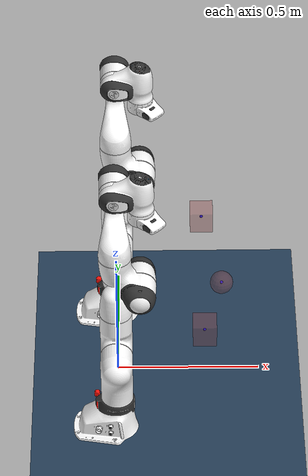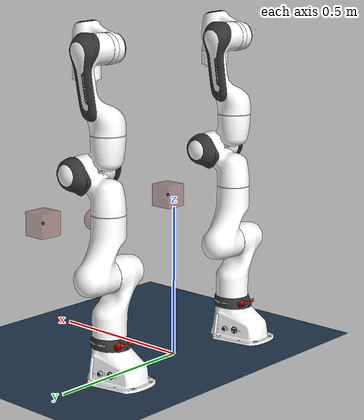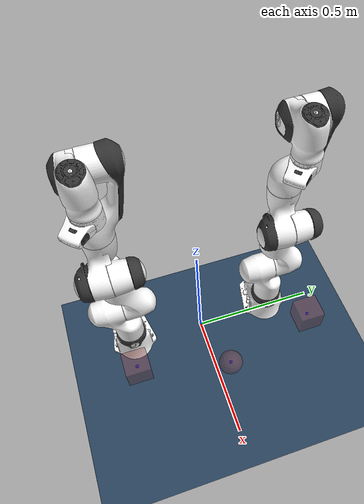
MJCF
<mujoco model="duo_fr3_scene">
  <include file="dual_fr3.xml" />
  <option gravity="0 0 0.0" />

  <!-- visual effect -->
  <statistic center="1 0.7 1.5" extent="0.8" />
  <visual>
    <headlight diffuse="0.6 0.6 0.6" ambient="0.3 0.3 0.3" specular="0 0 0" />
    <rgba haze="0.15 0.25 0.35 1" />
    <global azimuth="-140" elevation="-30" />
  </visual>

  <!-- background -->
  <asset>
    <texture type="skybox" builtin="flat" rgb1="0 0 0" rgb2="0 0 0" width="512" height="3072" />
    <texture type="2d" name="groundplane" builtin="checker" mark="edge" rgb1="0.2 0.3 0.4"
      rgb2="0.1 0.2 0.3" markrgb="0.8 0.8 0.8" width="300" height="300" />
    <material name="groundplane" texture="groundplane" texuniform="true" texrepeat="5 5"
      reflectance="0.2" />
  </asset>

  <worldbody>
    <!-- light and floor  -->
    <light pos="0 0 1.5" dir="0 0 -1" directional="true" />
    <geom name="floor" size="0 0 0.05" type="plane" material="groundplane" />

    <!-- Mocap object as target -->
    <body name="targetL" pos="0.3 0.3 0.45" quat="0 1 0 0" mocap="true">
      <geom type="box" size=".04 .04 .04" contype="0" conaffinity="0" rgba=".6 .3 .3 .4" />
      <site type="sphere" name="targetL_site" size="0.005" rgba="0 0 1 1" group="1" />
    </body>

    <body name="targetR"  pos="0.3 -0.3 0.45" quat="0 1 0 0" mocap="true">
      <geom type="box" size=".04 .04 .04" contype="0" conaffinity="0" rgba=".6 .3 .3 .4" />
      <site type="sphere" name="targetR_site" size="0.005" rgba="0 0 1 1" group="1" />
    </body>

    <body name="TCPL" pos="0.365 0 0.4" quat="0 1 0 0" mocap="true">
      <geom type="sphere" size=".04 .04 .04" contype="0" conaffinity="0" rgba=".6 .3 .3 .4" />
      <site type="sphere" name="TCPL_site" size="0.005" rgba="0 0 1 1" group="1" />
    </body>

    <body name="TCPR" pos="0.365 0 0.4" quat="0 1 0 0" mocap="true">
      <geom type="sphere" size=".04 .04 .04" contype="0" conaffinity="0" rgba=".6 .3 .3 .4" />
      <site type="sphere" name="TCPR_site" size="0.005" rgba="0 0 1 1" group="1" />
    </body>

  </worldbody>

</mujoco>

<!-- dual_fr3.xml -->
<mujoco model="duo_fr3">
  <compiler angle="radian" meshdir="assets"/>

  <option integrator="implicitfast"/>

  <default>
    <default class="fr3">
      <joint armature="0.1" damping="1"/>
      <position inheritrange="1"/>
      <default class="visual">
        <geom type="mesh" group="2" contype="0" conaffinity="0"/>
      </default>
      <default class="collision">
        <geom type="mesh" group="3" mass="0" density="0"/>
      </default>
      <site size="0.001" rgba="0.5 0.5 0.5 0.3" group="3"/>
    </default>
  </default>

  <asset>
    <material name="black" rgba=".2 .2 .2 1"/>
    <material name="white" rgba="1 1 1 1"/>
    <material name="red" rgba="1 0.072272 0.039546 1"/>
    <material name="gray" rgba="0.863156 0.863156 0.863157 1"/>
    <material name="button_green" rgba="0.102241 0.571125 0.102242 1"/>
    <material name="button_red" rgba="0.520996 0.008023 0.013702 1"/>
    <material name="button_blue" rgba="0.024157 0.445201 0.737911 1"/>

    <mesh file="link0_0.obj"/>
    <mesh file="link0_1.obj"/>
    <mesh file="link0_2.obj"/>
    <mesh file="link0_3.obj"/>
    <mesh file="link0_4.obj"/>
    <mesh file="link0_5.obj"/>
    <mesh file="link0_6.obj"/>
    <mesh file="link1.obj"/>
    <mesh file="link2.obj"/>
    <mesh file="link3_0.obj"/>
    <mesh file="link3_1.obj"/>
    <mesh file="link4_0.obj"/>
    <mesh file="link4_1.obj"/>
    <mesh file="link5_0.obj"/>
    <mesh file="link5_1.obj"/>
    <mesh file="link5_2.obj"/>
    <mesh file="link6_0.obj"/>
    <mesh file="link6_1.obj"/>
    <mesh file="link6_2.obj"/>
    <mesh file="link6_3.obj"/>
    <mesh file="link6_4.obj"/>
    <mesh file="link6_5.obj"/>
    <mesh file="link6_6.obj"/>
    <mesh file="link6_7.obj"/>
    <mesh file="link7_0.obj"/>
    <mesh file="link7_1.obj"/>
    <mesh file="link7_2.obj"/>
    <mesh file="link7_3.obj"/>

    <mesh name="link0_coll" file="link0.stl"/>
    <mesh name="link1_coll" file="link1.stl"/>
    <mesh name="link2_coll" file="link2.stl"/>
    <mesh name="link3_coll" file="link3.stl"/>
    <mesh name="link4_coll" file="link4.stl"/>
    <mesh name="link5_coll" file="link5.stl"/>
    <mesh name="link6_coll" file="link6.stl"/>
    <mesh name="link7_coll" file="link7.stl"/>
  </asset>

  <worldbody>
    <!-- left -->
    <body name="left_base" childclass="fr3" pos="0 0.3 0">
      <body name="left_fr3_link0">
        <geom mesh="link0_0" material="black" class="visual"/>
        <geom mesh="link0_1" material="white" class="visual"/>
        <geom mesh="link0_2" material="white" class="visual"/>
        <geom mesh="link0_3" material="white" class="visual"/>
        <geom mesh="link0_4" material="white" class="visual"/>
        <geom mesh="link0_5" material="red" class="visual"/>
        <geom mesh="link0_6" material="black" class="visual"/>
        <geom name="left_fr3_link0_collision" mesh="link0_coll" class="collision"/>
        <body name="left_fr3_link1" pos="0 0 0.333">
          <inertial pos="4.128e-07 -0.0181251 -0.0386036" quat="0.998098 -0.0605364 0.00380499 0.0110109" mass="2.92747"
            diaginertia="0.0239286 0.0227246 0.00610634"/>
          <joint name="left_fr3_joint1" axis="0 0 1" range="-2.7437 2.7437" actuatorfrcrange="-87 87"/>
          <geom name="left_fr3_link1_collision" class="collision" mesh="link1_coll"/>
          <geom material="white" mesh="link1" class="visual"/>
          <body name="left_fr3_link2" quat="1 -1 0 0">
            <inertial pos="0.00318289 -0.0743222 0.00881461" quat="0.502599 0.584437 -0.465998 0.434366" mass="2.93554"
              diaginertia="0.0629567 0.0411924 0.0246371"/>
            <joint name="left_fr3_joint2" axis="0 0 1" range="-1.7837 1.7837" actuatorfrcrange="-87 87"/>
            <geom material="white" mesh="link2" class="visual"/>
            <geom name="left_fr3_link2_collision" class="collision" mesh="link2_coll"/>
            <body name="left_fr3_link3" pos="0 -0.316 0" quat="1 1 0 0">
              <inertial pos="0.0407016 -0.00482006 -0.0289731" quat="0.921025 -0.244161 0.155272 0.260745" mass="2.2449"
                diaginertia="0.0267409 0.0189869 0.0171587"/>
              <joint name="left_fr3_joint3" axis="0 0 1" range="-2.9007 2.9007" actuatorfrcrange="-87 87"/>
              <geom mesh="link3_0" material="white" class="visual"/>
              <geom mesh="link3_1" material="black" class="visual"/>
              <geom name="left_fr3_link3_collision" class="collision" mesh="link3_coll"/>
              <body name="left_fr3_link4" pos="0.0825 0 0" quat="1 1 0 0">
                <inertial pos="-0.0459101 0.0630493 -0.00851879" quat="0.438018 0.803311 0.00937812 0.403414"
                  mass="2.6156" diaginertia="0.05139 0.0372717 0.0160047"/>
                <joint name="left_fr3_joint4" axis="0 0 1" range="-3.0421 -0.1518" actuatorfrcrange="-87 87"/>
                <geom mesh="link4_0" material="white" class="visual"/>
                <geom mesh="link4_1" material="black" class="visual"/>
                <geom name="left_fr3_link4_collision" class="collision" mesh="link4_coll"/>
                <body name="left_fr3_link5" pos="-0.0825 0.384 0" quat="1 -1 0 0">
                  <inertial pos="-0.00160396 0.0292536 -0.0972966" quat="0.919031 0.125604 0.0751531 -0.366003"
                    mass="2.32712" diaginertia="0.0579335 0.0449144 0.0130634"/>
                  <joint name="left_fr3_joint5" axis="0 0 1" range="-2.8065 2.8065" actuatorfrcrange="-12 12"/>
                  <geom mesh="link5_0" material="white" class="visual"/>
                  <geom mesh="link5_1" material="white" class="visual"/>
                  <geom mesh="link5_2" material="black" class="visual"/>
                  <geom name="left_fr3_link5_collision" class="collision" mesh="link5_coll"/>
                  <body name="left_fr3_link6" quat="1 1 0 0">
                    <inertial pos="0.0597131 -0.0410295 -0.0101693" quat="0.621301 0.552665 0.510011 0.220081"
                      mass="1.81704" diaginertia="0.0175039 0.0161123 0.00193529"/>
                    <joint name="left_fr3_joint6" axis="0 0 1" range="0.5445 4.5169" actuatorfrcrange="-12 12"/>
                    <geom mesh="link6_0" material="button_green" class="visual"/>
                    <geom mesh="link6_1" material="white" class="visual"/>
                    <geom mesh="link6_2" material="white" class="visual"/>
                    <geom mesh="link6_3" material="gray" class="visual"/>
                    <geom mesh="link6_4" material="button_red" class="visual"/>
                    <geom mesh="link6_5" material="white" class="visual"/>
                    <geom mesh="link6_6" material="black" class="visual"/>
                    <geom mesh="link6_7" material="button_blue" class="visual"/>
                    <geom name="left_fr3_link6_collision" class="collision" mesh="link6_coll"/>
                    <body name="left_fr3_link7" pos="0.088 0 0" quat="1 1 0 0">
                      <inertial pos="0.00452258 0.00862619 -0.0161633" quat="0.727579 0.0978688 -0.24906 0.63168"
                        mass="0.627143" diaginertia="0.000223836 0.000223642 5.64132e-07"/>
                      <joint name="left_fr3_joint7" axis="0 0 1" range="-3.0159 3.0159" actuatorfrcrange="-12 12"/>
                      <geom mesh="link7_0" material="black" class="visual"/>
                      <geom mesh="link7_1" material="white" class="visual"/>
                      <geom mesh="link7_2" material="white" class="visual"/>
                      <geom mesh="link7_3" material="black" class="visual"/>
                      <geom name="left_fr3_link7_collision" class="collision" mesh="link7_coll"/>
                      <!-- wrist camera -->
                      <camera name="left_ee_cam" pos="0 0 0.107" xyaxes="-1 0 0 0 1 0" fovy="60"/>
                      <site name="left_fr3_ee_attachment" pos="0 0 0.107" quat="1 0 0 0"/>
                    </body>
                      <!-- franka hand -->
                  </body>
                </body>
              </body>
            </body>
          </body>
        </body>
      </body>
    </body>

     <!-- right -->
    <body name="right_base" childclass="fr3" pos="0 -0.3 0">
      <body name="right_fr3_link0">
        <geom mesh="link0_0" material="black" class="visual"/>
        <geom mesh="link0_1" material="white" class="visual"/>
        <geom mesh="link0_2" material="white" class="visual"/>
        <geom mesh="link0_3" material="white" class="visual"/>
        <geom mesh="link0_4" material="white" class="visual"/>
        <geom mesh="link0_5" material="red" class="visual"/>
        <geom mesh="link0_6" material="black" class="visual"/>
        <geom name="right_fr3_link0_collision" mesh="link0_coll" class="collision"/>
        <body name="right_fr3_link1" pos="0 0 0.333">
          <inertial pos="4.128e-07 -0.0181251 -0.0386036" quat="0.998098 -0.0605364 0.00380499 0.0110109" mass="2.92747"
            diaginertia="0.0239286 0.0227246 0.00610634"/>
          <joint name="right_fr3_joint1" axis="0 0 1" range="-2.7437 2.7437" actuatorfrcrange="-87 87"/>
          <geom name="right_fr3_link1_collision" class="collision" mesh="link1_coll"/>
          <geom material="white" mesh="link1" class="visual"/>
          <body name="right_fr3_link2" quat="1 -1 0 0">
            <inertial pos="0.00318289 -0.0743222 0.00881461" quat="0.502599 0.584437 -0.465998 0.434366" mass="2.93554"
              diaginertia="0.0629567 0.0411924 0.0246371"/>
            <joint name="right_fr3_joint2" axis="0 0 1" range="-1.7837 1.7837" actuatorfrcrange="-87 87"/>
            <geom material="white" mesh="link2" class="visual"/>
            <geom name="right_fr3_link2_collision" class="collision" mesh="link2_coll"/>
            <body name="right_fr3_link3" pos="0 -0.316 0" quat="1 1 0 0">
              <inertial pos="0.0407016 -0.00482006 -0.0289731" quat="0.921025 -0.244161 0.155272 0.260745" mass="2.2449"
                diaginertia="0.0267409 0.0189869 0.0171587"/>
              <joint name="right_fr3_joint3" axis="0 0 1" range="-2.9007 2.9007" actuatorfrcrange="-87 87"/>
              <geom mesh="link3_0" material="white" class="visual"/>
              <geom mesh="link3_1" material="black" class="visual"/>
              <geom name="right_fr3_link3_collision" class="collision" mesh="link3_coll"/>
              <body name="right_fr3_link4" pos="0.0825 0 0" quat="1 1 0 0">
                <inertial pos="-0.0459101 0.0630493 -0.00851879" quat="0.438018 0.803311 0.00937812 0.403414"
                  mass="2.6156" diaginertia="0.05139 0.0372717 0.0160047"/>
                <joint name="right_fr3_joint4" axis="0 0 1" range="-3.0421 -0.1518" actuatorfrcrange="-87 87"/>
                <geom mesh="link4_0" material="white" class="visual"/>
                <geom mesh="link4_1" material="black" class="visual"/>
                <geom name="right_fr3_link4_collision" class="collision" mesh="link4_coll"/>
                <body name="right_fr3_link5" pos="-0.0825 0.384 0" quat="1 -1 0 0">
                  <inertial pos="-0.00160396 0.0292536 -0.0972966" quat="0.919031 0.125604 0.0751531 -0.366003"
                    mass="2.32712" diaginertia="0.0579335 0.0449144 0.0130634"/>
                  <joint name="right_fr3_joint5" axis="0 0 1" range="-2.8065 2.8065" actuatorfrcrange="-12 12"/>
                  <geom mesh="link5_0" material="white" class="visual"/>
                  <geom mesh="link5_1" material="white" class="visual"/>
                  <geom mesh="link5_2" material="black" class="visual"/>
                  <geom name="right_fr3_link5_collision" class="collision" mesh="link5_coll"/>
                  <body name="right_fr3_link6" quat="1 1 0 0">
                    <inertial pos="0.0597131 -0.0410295 -0.0101693" quat="0.621301 0.552665 0.510011 0.220081"
                      mass="1.81704" diaginertia="0.0175039 0.0161123 0.00193529"/>
                    <joint name="right_fr3_joint6" axis="0 0 1" range="0.5445 4.5169" actuatorfrcrange="-12 12"/>
                    <geom mesh="link6_0" material="button_green" class="visual"/>
                    <geom mesh="link6_1" material="white" class="visual"/>
                    <geom mesh="link6_2" material="white" class="visual"/>
                    <geom mesh="link6_3" material="gray" class="visual"/>
                    <geom mesh="link6_4" material="button_red" class="visual"/>
                    <geom mesh="link6_5" material="white" class="visual"/>
                    <geom mesh="link6_6" material="black" class="visual"/>
                    <geom mesh="link6_7" material="button_blue" class="visual"/>
                    <geom name="right_fr3_link6_collision" class="collision" mesh="link6_coll"/>
                    <body name="right_fr3_link7" pos="0.088 0 0" quat="1 1 0 0">
                      <inertial pos="0.00452258 0.00862619 -0.0161633" quat="0.727579 0.0978688 -0.24906 0.63168"
                        mass="0.627143" diaginertia="0.000223836 0.000223642 5.64132e-07"/>
                      <joint name="right_fr3_joint7" axis="0 0 1" range="-3.0159 3.0159" actuatorfrcrange="-12 12"/>
                      <geom mesh="link7_0" material="black" class="visual"/>
                      <geom mesh="link7_1" material="white" class="visual"/>
                      <geom mesh="link7_2" material="white" class="visual"/>
                      <geom mesh="link7_3" material="black" class="visual"/>
                      <geom name="right_fr3_link7_collision" class="collision" mesh="link7_coll"/>
                      <!-- wrist camera -->
                      <camera name="right_ee_cam" pos="0 0 0.107" xyaxes="-1 0 0 0 1 0" fovy="60"/>
                      <site name="right_fr3_ee_attachment" pos="0 0 0.107" quat="1 0 0 0"/>
                    </body>
                      <!-- franka hand -->
                  </body>
                </body>
              </body>
            </body>
          </body>
        </body>
      </body>
    </body>
  </worldbody>

  <actuator>
    <!-- left -->
    <motor class="fr3" name="left_fr3_actuator1" joint="left_fr3_joint1" ctrlrange="-40 40"/>
    <motor class="fr3" name="left_fr3_actuator2" joint="left_fr3_joint2" ctrlrange="-40 40"/>
    <motor class="fr3" name="left_fr3_actuator3" joint="left_fr3_joint3" ctrlrange="-40 40"/>
    <motor class="fr3" name="left_fr3_actuator4" joint="left_fr3_joint4" ctrlrange="-40 40"/>
    <motor class="fr3" name="left_fr3_actuator5" joint="left_fr3_joint5" ctrlrange="-40 40"/>
    <motor class="fr3" name="left_fr3_actuator6" joint="left_fr3_joint6" ctrlrange="-40 40"/>
    <motor class="fr3" name="left_fr3_actuator7" joint="left_fr3_joint7" ctrlrange="-40 40"/>
    <!-- right -->
    <motor class="fr3" name="right_fr3_actuator1" joint="right_fr3_joint1" ctrlrange="-40 40"/>
    <motor class="fr3" name="right_fr3_actuator2" joint="right_fr3_joint2" ctrlrange="-40 40"/>
    <motor class="fr3" name="right_fr3_actuator3" joint="right_fr3_joint3" ctrlrange="-40 40"/>
    <motor class="fr3" name="right_fr3_actuator4" joint="right_fr3_joint4" ctrlrange="-40 40"/>
    <motor class="fr3" name="right_fr3_actuator5" joint="right_fr3_joint5" ctrlrange="-40 40"/>
    <motor class="fr3" name="right_fr3_actuator6" joint="right_fr3_joint6" ctrlrange="-40 40"/>
    <motor class="fr3" name="right_fr3_actuator7" joint="right_fr3_joint7" ctrlrange="-40 40"/>
  </actuator>

  <!-- init position definition -->
  <custom>
    <!-- ctrl="0 0 0 -1.57079 0 1.57079 -0.7853" -->
    <numeric name="init_pos" data="0 -1.3 0 -2.5 0 1.57079 -0.2353 0 0 0 -1.57079 0 1.57079 -0.7853" />
  </custom>
</mujoco>
